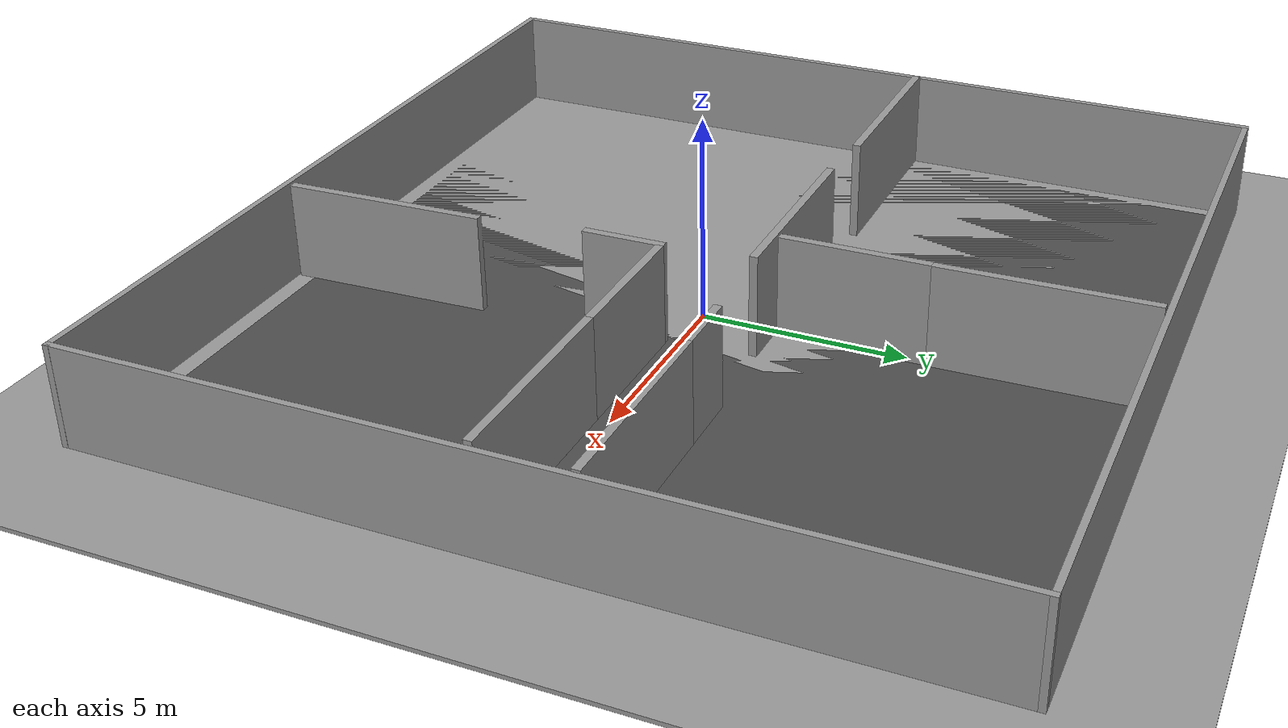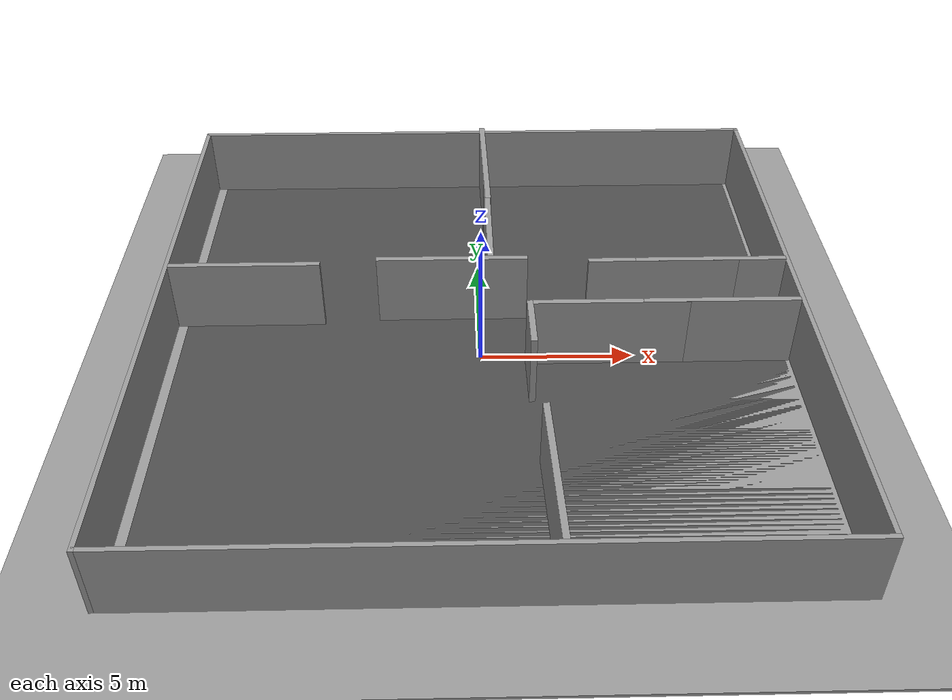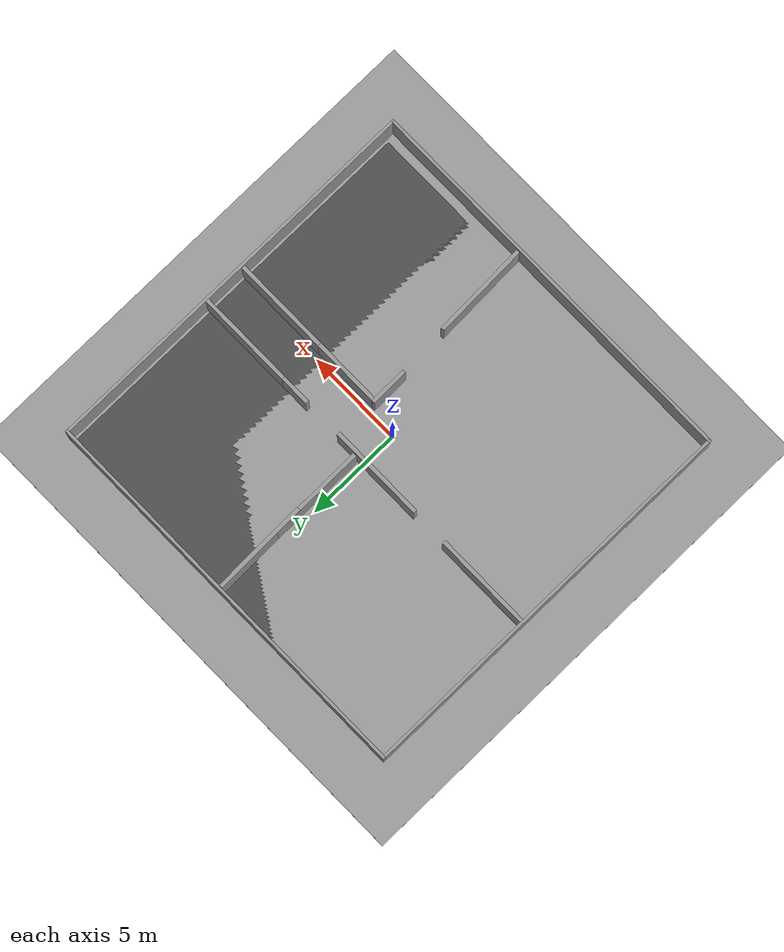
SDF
<sdf version="1.6">
 <world name="default">
  <light name="sun" type="directional">
   <pose>0 0 10 0 -0 0</pose>
   <diffuse>0.8 0.8 0.8 1</diffuse>
   <specular>0.1 0.1 0.1 1</specular>
   <attenuation>
    <range>1000</range>
    <constant>0.9</constant>
    <linear>0.01</linear>
    <quadratic>0.001</quadratic>
   </attenuation>
   <direction>-0.5 0.5 -1</direction>
  </light>
  <model name="ground_plane">
   <static>1</static>
   <link name="link">
    <collision name="collision">
     <geometry><plane><normal>0 0 1</normal><size>100 100</size></plane></geometry>
     <surface><friction><ode><mu>100</mu><mu2>50</mu2></ode></friction></surface>
    </collision>
    <visual name="visual">
     <cast_shadows>0</cast_shadows>
     <geometry><plane><normal>0 0 1</normal><size>100 100</size></plane></geometry>
     <material>
      <script><uri>file://media/materials/scripts/gazebo.material</uri><name>Gazebo/Grey</name></script>
     </material>
    </visual>
   </link>
  </model>
  <gravity>0 0 -9.8</gravity>
  <magnetic_field>6e-06 2.3e-05 -4.2e-05</magnetic_field>
  <atmosphere type="adiabatic"/>
  <physics name="default_physics" default="0" type="ode">
   <max_step_size>0.001</max_step_size>
   <real_time_factor>1</real_time_factor>
   <real_time_update_rate>1000</real_time_update_rate>
  </physics>
  <scene><ambient>0.4 0.4 0.4 1</ambient><background>0.7 0.7 0.7 1</background><shadows>1</shadows></scene>
  <spherical_coordinates>
   <surface_model>EARTH_WGS84</surface_model>
   <latitude_deg>0</latitude_deg>
   <longitude_deg>0</longitude_deg>
   <elevation>0</elevation>
   <heading_deg>0</heading_deg>
  </spherical_coordinates>
  <model name="asphalt_plane">
   <static>1</static>
   <link name="link">
    <collision name="collision"><geometry><box><size>20 20 0.1</size></box></geometry></collision>
    <visual name="visual">
     <cast_shadows>0</cast_shadows>
     <geometry><box><size>20 20 0.1</size></box></geometry>
     <material>
      <script>
       <uri>model://asphalt_plane/materials/scripts</uri>
       <uri>model://asphalt_plane/materials/textures</uri>
       <name>vrc/asphalt</name>
      </script>
     </material>
    </visual>
   </link>
   <pose>0.035645 0.538807 0 0 -0 0</pose>
  </model>
  <model name="ground_plane_0">
   <static>1</static>
   <link name="link">
    <collision name="collision">
     <geometry><plane><normal>0 0 1</normal><size>100 100</size></plane></geometry>
     <surface><friction><ode><mu>100</mu><mu2>50</mu2></ode></friction></surface>
    </collision>
    <visual name="visual">
     <cast_shadows>0</cast_shadows>
     <geometry><plane><normal>0 0 1</normal><size>100 100</size></plane></geometry>
     <material>
      <script><uri>file://media/materials/scripts/gazebo.material</uri><name>Gazebo/Grey</name></script>
     </material>
    </visual>
   </link>
   <pose>-7.33918 4.40208 0 0 -0 0</pose>
  </model>
  <model name="grey_wall_0_0_0_0">
   <link name="link">
    <pose>0 0 1.4 0 -0 0</pose>
    <inertial>
     <mass>1</mass>
     <inertia><ixx>1</ixx><ixy>0</ixy><ixz>0</ixz><iyy>1</iyy><iyz>0</iyz><izz>1</izz></inertia>
    </inertial>
    <visual name="visual">
     <cast_shadows>0</cast_shadows>
     <geometry><box><size>5 0.2 2.5</size></box></geometry>
     <material>
      <script>
       <uri>model://grey_wall/materials/scripts</uri>
       <uri>model://grey_wall/materials/textures</uri>
       <name>vrc/grey_wall</name>
      </script>
      <ambient>1 1 1 1</ambient>
      <diffuse>1 1 1 1</diffuse>
      <specular>0 0 0 1</specular>
      <emissive>0 0 0 1</emissive>
      <shader type="vertex"><normal_map>__default__</normal_map></shader>
     </material>
    </visual>
    <collision name="collision">
     <geometry><box><size>5 0.2 2.5</size></box></geometry>
     <surface>
      <friction>
       <ode><mu>1</mu><mu2>1</mu2><fdir1>0 0 0</fdir1><slip1>0</slip1><slip2>0</slip2></ode>
       <torsional>
        <coefficient>1</coefficient>
        <patch_radius>0</patch_radius>
        <surface_radius>0</surface_radius>
        <use_patch_radius>1</use_patch_radius>
        <ode><slip>0</slip></ode>
       </torsional>
      </friction>
      <bounce><restitution_coefficient>0</restitution_coefficient><threshold>1e+06</threshold></bounce>
      <contact>
       <collide_without_contact>0</collide_without_contact>
       <collide_without_contact_bitmask>1</collide_without_contact_bitmask>
       <collide_bitmask>1</collide_bitmask>
       <ode>
        <soft_cfm>0</soft_cfm>
        <soft_erp>0.2</soft_erp>
        <kp>1e+13</kp>
        <kd>1</kd>
        <max_vel>0.01</max_vel>
        <min_depth>0</min_depth>
       </ode>
       <bullet>
        <split_impulse>1</split_impulse>
        <split_impulse_penetration_threshold>-0.01</split_impulse_penetration_threshold>
        <soft_cfm>0</soft_cfm>
        <soft_erp>0.2</soft_erp>
        <kp>1e+13</kp>
        <kd>1</kd>
       </bullet>
      </contact>
     </surface>
    </collision>
   </link>
   <static>1</static>
   <pose>7.67803 1.90782 -0.08945 0 -0 0</pose>
  </model>
  <model name="grey_wall_0_0_0_0_0">
   <link name="link">
    <pose>0 0 1.4 0 -0 0</pose>
    <inertial>
     <mass>1</mass>
     <inertia><ixx>1</ixx><ixy>0</ixy><ixz>0</ixz><iyy>1</iyy><iyz>0</iyz><izz>1</izz></inertia>
    </inertial>
    <visual name="visual">
     <cast_shadows>0</cast_shadows>
     <geometry><box><size>5 0.2 2.5</size></box></geometry>
     <material>
      <script>
       <uri>model://grey_wall/materials/scripts</uri>
       <uri>model://grey_wall/materials/textures</uri>
       <name>vrc/grey_wall</name>
      </script>
      <ambient>1 1 1 1</ambient>
      <diffuse>1 1 1 1</diffuse>
      <specular>0 0 0 1</specular>
      <emissive>0 0 0 1</emissive>
      <shader type="vertex"><normal_map>__default__</normal_map></shader>
     </material>
    </visual>
    <collision name="collision">
     <geometry><box><size>5 0.2 2.5</size></box></geometry>
     <surface>
      <friction>
       <ode><mu>1</mu><mu2>1</mu2><fdir1>0 0 0</fdir1><slip1>0</slip1><slip2>0</slip2></ode>
       <torsional>
        <coefficient>1</coefficient>
        <patch_radius>0</patch_radius>
        <surface_radius>0</surface_radius>
        <use_patch_radius>1</use_patch_radius>
        <ode><slip>0</slip></ode>
       </torsional>
      </friction>
      <bounce><restitution_coefficient>0</restitution_coefficient><threshold>1e+06</threshold></bounce>
      <contact>
       <collide_without_contact>0</collide_without_contact>
       <collide_without_contact_bitmask>1</collide_without_contact_bitmask>
       <collide_bitmask>1</collide_bitmask>
       <ode>
        <soft_cfm>0</soft_cfm>
        <soft_erp>0.2</soft_erp>
        <kp>1e+13</kp>
        <kd>1</kd>
        <max_vel>0.01</max_vel>
        <min_depth>0</min_depth>
       </ode>
       <bullet>
        <split_impulse>1</split_impulse>
        <split_impulse_penetration_threshold>-0.01</split_impulse_penetration_threshold>
        <soft_cfm>0</soft_cfm>
        <soft_erp>0.2</soft_erp>
        <kp>1e+13</kp>
        <kd>1</kd>
       </bullet>
      </contact>
     </surface>
    </collision>
   </link>
   <static>1</static>
   <pose>6.10995 1.90225 -0.09013 0 -0 0</pose>
  </model>
  <model name="grey_wall_0_0_0_0_1">
   <link name="link">
    <pose>0 0 1.4 0 -0 0</pose>
    <inertial>
     <mass>1</mass>
     <inertia><ixx>1</ixx><ixy>0</ixy><ixz>0</ixz><iyy>1</iyy><iyz>0</iyz><izz>1</izz></inertia>
    </inertial>
    <visual name="visual">
     <cast_shadows>0</cast_shadows>
     <geometry><box><size>5 0.2 2.5</size></box></geometry>
     <material>
      <script>
       <uri>model://grey_wall/materials/scripts</uri>
       <uri>model://grey_wall/materials/textures</uri>
       <name>vrc/grey_wall</name>
      </script>
      <ambient>1 1 1 1</ambient>
      <diffuse>1 1 1 1</diffuse>
      <specular>0 0 0 1</specular>
      <emissive>0 0 0 1</emissive>
      <shader type="vertex"><normal_map>__default__</normal_map></shader>
     </material>
    </visual>
    <collision name="collision">
     <geometry><box><size>5 0.2 2.5</size></box></geometry>
     <surface>
      <friction>
       <ode><mu>1</mu><mu2>1</mu2><fdir1>0 0 0</fdir1><slip1>0</slip1><slip2>0</slip2></ode>
       <torsional>
        <coefficient>1</coefficient>
        <patch_radius>0</patch_radius>
        <surface_radius>0</surface_radius>
        <use_patch_radius>1</use_patch_radius>
        <ode><slip>0</slip></ode>
       </torsional>
      </friction>
      <bounce><restitution_coefficient>0</restitution_coefficient><threshold>1e+06</threshold></bounce>
      <contact>
       <collide_without_contact>0</collide_without_contact>
       <collide_without_contact_bitmask>1</collide_without_contact_bitmask>
       <collide_bitmask>1</collide_bitmask>
       <ode>
        <soft_cfm>0</soft_cfm>
        <soft_erp>0.2</soft_erp>
        <kp>1e+13</kp>
        <kd>1</kd>
        <max_vel>0.01</max_vel>
        <min_depth>0</min_depth>
       </ode>
       <bullet>
        <split_impulse>1</split_impulse>
        <split_impulse_penetration_threshold>-0.01</split_impulse_penetration_threshold>
        <soft_cfm>0</soft_cfm>
        <soft_erp>0.2</soft_erp>
        <kp>1e+13</kp>
        <kd>1</kd>
       </bullet>
      </contact>
     </surface>
    </collision>
   </link>
   <static>1</static>
   <pose>0.362088 4.52652 0.05024 0 -0 1.57628</pose>
  </model>
  <model name="grey_wall_0_0_0_0_2">
   <link name="link">
    <pose>0 0 1.4 0 -0 0</pose>
    <inertial>
     <mass>1</mass>
     <inertia><ixx>1</ixx><ixy>0</ixy><ixz>0</ixz><iyy>1</iyy><iyz>0</iyz><izz>1</izz></inertia>
    </inertial>
    <visual name="visual">
     <cast_shadows>0</cast_shadows>
     <geometry><box><size>5 0.2 2.5</size></box></geometry>
     <material>
      <script>
       <uri>model://grey_wall/materials/scripts</uri>
       <uri>model://grey_wall/materials/textures</uri>
       <name>vrc/grey_wall</name>
      </script>
      <ambient>1 1 1 1</ambient>
      <diffuse>1 1 1 1</diffuse>
      <specular>0 0 0 1</specular>
      <emissive>0 0 0 1</emissive>
      <shader type="vertex"><normal_map>__default__</normal_map></shader>
     </material>
    </visual>
    <collision name="collision">
     <geometry><box><size>5 0.2 2.5</size></box></geometry>
     <surface>
      <friction>
       <ode><mu>1</mu><mu2>1</mu2><fdir1>0 0 0</fdir1><slip1>0</slip1><slip2>0</slip2></ode>
       <torsional>
        <coefficient>1</coefficient>
        <patch_radius>0</patch_radius>
        <surface_radius>0</surface_radius>
        <use_patch_radius>1</use_patch_radius>
        <ode><slip>0</slip></ode>
       </torsional>
      </friction>
      <bounce><restitution_coefficient>0</restitution_coefficient><threshold>1e+06</threshold></bounce>
      <contact>
       <collide_without_contact>0</collide_without_contact>
       <collide_without_contact_bitmask>1</collide_without_contact_bitmask>
       <collide_bitmask>1</collide_bitmask>
       <ode>
        <soft_cfm>0</soft_cfm>
        <soft_erp>0.2</soft_erp>
        <kp>1e+13</kp>
        <kd>1</kd>
        <max_vel>0.01</max_vel>
        <min_depth>0</min_depth>
       </ode>
       <bullet>
        <split_impulse>1</split_impulse>
        <split_impulse_penetration_threshold>-0.01</split_impulse_penetration_threshold>
        <soft_cfm>0</soft_cfm>
        <soft_erp>0.2</soft_erp>
        <kp>1e+13</kp>
        <kd>1</kd>
       </bullet>
      </contact>
     </surface>
    </collision>
   </link>
   <static>1</static>
   <pose>0.328768 8.06562 0.05618 0 0 -1.54983</pose>
  </model>
  <model name="grey_wall_0_0_0_0_3">
   <link name="link">
    <pose>0 0 1.4 0 -0 0</pose>
    <inertial>
     <mass>1</mass>
     <inertia><ixx>1</ixx><ixy>0</ixy><ixz>0</ixz><iyy>1</iyy><iyz>0</iyz><izz>1</izz></inertia>
    </inertial>
    <visual name="visual">
     <cast_shadows>0</cast_shadows>
     <geometry><box><size>5 0.2 2.5</size></box></geometry>
     <material>
      <script>
       <uri>model://grey_wall/materials/scripts</uri>
       <uri>model://grey_wall/materials/textures</uri>
       <name>vrc/grey_wall</name>
      </script>
      <ambient>1 1 1 1</ambient>
      <diffuse>1 1 1 1</diffuse>
      <specular>0 0 0 1</specular>
      <emissive>0 0 0 1</emissive>
      <shader type="vertex"><normal_map>__default__</normal_map></shader>
     </material>
    </visual>
    <collision name="collision">
     <geometry><box><size>5 0.2 2.5</size></box></geometry>
     <surface>
      <friction>
       <ode><mu>1</mu><mu2>1</mu2><fdir1>0 0 0</fdir1><slip1>0</slip1><slip2>0</slip2></ode>
       <torsional>
        <coefficient>1</coefficient>
        <patch_radius>0</patch_radius>
        <surface_radius>0</surface_radius>
        <use_patch_radius>1</use_patch_radius>
        <ode><slip>0</slip></ode>
       </torsional>
      </friction>
      <bounce><restitution_coefficient>0</restitution_coefficient><threshold>1e+06</threshold></bounce>
      <contact>
       <collide_without_contact>0</collide_without_contact>
       <collide_without_contact_bitmask>1</collide_without_contact_bitmask>
       <collide_bitmask>1</collide_bitmask>
       <ode>
        <soft_cfm>0</soft_cfm>
        <soft_erp>0.2</soft_erp>
        <kp>1e+13</kp>
        <kd>1</kd>
        <max_vel>0.01</max_vel>
        <min_depth>0</min_depth>
       </ode>
       <bullet>
        <split_impulse>1</split_impulse>
        <split_impulse_penetration_threshold>-0.01</split_impulse_penetration_threshold>
        <soft_cfm>0</soft_cfm>
        <soft_erp>0.2</soft_erp>
        <kp>1e+13</kp>
        <kd>1</kd>
       </bullet>
      </contact>
     </surface>
    </collision>
   </link>
   <static>1</static>
   <pose>-0.906268 1.88516 0.06706 0 -0 0</pose>
  </model>
  <model name="grey_wall_0_0_0_0_4">
   <link name="link">
    <pose>0 0 1.4 0 -0 0</pose>
    <inertial>
     <mass>1</mass>
     <inertia><ixx>1</ixx><ixy>0</ixy><ixz>0</ixz><iyy>1</iyy><iyz>0</iyz><izz>1</izz></inertia>
    </inertial>
    <visual name="visual">
     <cast_shadows>0</cast_shadows>
     <geometry><box><size>5 0.2 2.5</size></box></geometry>
     <material>
      <script>
       <uri>model://grey_wall/materials/scripts</uri>
       <uri>model://grey_wall/materials/textures</uri>
       <name>vrc/grey_wall</name>
      </script>
      <ambient>1 1 1 1</ambient>
      <diffuse>1 1 1 1</diffuse>
      <specular>0 0 0 1</specular>
      <emissive>0 0 0 1</emissive>
      <shader type="vertex"><normal_map>__default__</normal_map></shader>
     </material>
    </visual>
    <collision name="collision">
     <geometry><box><size>5 0.2 2.5</size></box></geometry>
     <surface>
      <friction>
       <ode><mu>1</mu><mu2>1</mu2><fdir1>0 0 0</fdir1><slip1>0</slip1><slip2>0</slip2></ode>
       <torsional>
        <coefficient>1</coefficient>
        <patch_radius>0</patch_radius>
        <surface_radius>0</surface_radius>
        <use_patch_radius>1</use_patch_radius>
        <ode><slip>0</slip></ode>
       </torsional>
      </friction>
      <bounce><restitution_coefficient>0</restitution_coefficient><threshold>1e+06</threshold></bounce>
      <contact>
       <collide_without_contact>0</collide_without_contact>
       <collide_without_contact_bitmask>1</collide_without_contact_bitmask>
       <collide_bitmask>1</collide_bitmask>
       <ode>
        <soft_cfm>0</soft_cfm>
        <soft_erp>0.2</soft_erp>
        <kp>1e+13</kp>
        <kd>1</kd>
        <max_vel>0.01</max_vel>
        <min_depth>0</min_depth>
       </ode>
       <bullet>
        <split_impulse>1</split_impulse>
        <split_impulse_penetration_threshold>-0.01</split_impulse_penetration_threshold>
        <soft_cfm>0</soft_cfm>
        <soft_erp>0.2</soft_erp>
        <kp>1e+13</kp>
        <kd>1</kd>
       </bullet>
      </contact>
     </surface>
    </collision>
   </link>
   <static>1</static>
   <pose>-7.77111 1.8972 -0.09807 0 -0 0</pose>
  </model>
  <model name="grey_wall_0_0_0_0_5">
   <link name="link">
    <pose>0 0 1.4 0 -0 0</pose>
    <inertial>
     <mass>1</mass>
     <inertia><ixx>1</ixx><ixy>0</ixy><ixz>0</ixz><iyy>1</iyy><iyz>0</iyz><izz>1</izz></inertia>
    </inertial>
    <visual name="visual">
     <cast_shadows>0</cast_shadows>
     <geometry><box><size>5 0.2 2.5</size></box></geometry>
     <material>
      <script>
       <uri>model://grey_wall/materials/scripts</uri>
       <uri>model://grey_wall/materials/textures</uri>
       <name>vrc/grey_wall</name>
      </script>
      <ambient>1 1 1 1</ambient>
      <diffuse>1 1 1 1</diffuse>
      <specular>0 0 0 1</specular>
      <emissive>0 0 0 1</emissive>
      <shader type="vertex"><normal_map>__default__</normal_map></shader>
     </material>
    </visual>
    <collision name="collision">
     <geometry><box><size>5 0.2 2.5</size></box></geometry>
     <surface>
      <friction>
       <ode><mu>1</mu><mu2>1</mu2><fdir1>0 0 0</fdir1><slip1>0</slip1><slip2>0</slip2></ode>
       <torsional>
        <coefficient>1</coefficient>
        <patch_radius>0</patch_radius>
        <surface_radius>0</surface_radius>
        <use_patch_radius>1</use_patch_radius>
        <ode><slip>0</slip></ode>
       </torsional>
      </friction>
      <bounce><restitution_coefficient>0</restitution_coefficient><threshold>1e+06</threshold></bounce>
      <contact>
       <collide_without_contact>0</collide_without_contact>
       <collide_without_contact_bitmask>1</collide_without_contact_bitmask>
       <collide_bitmask>1</collide_bitmask>
       <ode>
        <soft_cfm>0</soft_cfm>
        <soft_erp>0.2</soft_erp>
        <kp>1e+13</kp>
        <kd>1</kd>
        <max_vel>0.01</max_vel>
        <min_depth>0</min_depth>
       </ode>
       <bullet>
        <split_impulse>1</split_impulse>
        <split_impulse_penetration_threshold>-0.01</split_impulse_penetration_threshold>
        <soft_cfm>0</soft_cfm>
        <soft_erp>0.2</soft_erp>
        <kp>1e+13</kp>
        <kd>1</kd>
       </bullet>
      </contact>
     </surface>
    </collision>
   </link>
   <static>1</static>
   <pose>1.84149 -7.35537 -0.19122 0 -0 1.60542</pose>
  </model>
  <model name="grey_wall_0_0_0_0_6">
   <link name="link">
    <pose>0 0 1.4 0 -0 0</pose>
    <inertial>
     <mass>1</mass>
     <inertia><ixx>1</ixx><ixy>0</ixy><ixz>0</ixz><iyy>1</iyy><iyz>0</iyz><izz>1</izz></inertia>
    </inertial>
    <visual name="visual">
     <cast_shadows>0</cast_shadows>
     <geometry><box><size>5 0.2 2.5</size></box></geometry>
     <material>
      <script>
       <uri>model://grey_wall/materials/scripts</uri>
       <uri>model://grey_wall/materials/textures</uri>
       <name>vrc/grey_wall</name>
      </script>
      <ambient>1 1 1 1</ambient>
      <diffuse>1 1 1 1</diffuse>
      <specular>0 0 0 1</specular>
      <emissive>0 0 0 1</emissive>
      <shader type="vertex"><normal_map>__default__</normal_map></shader>
     </material>
    </visual>
    <collision name="collision">
     <geometry><box><size>5 0.2 2.5</size></box></geometry>
     <surface>
      <friction>
       <ode><mu>1</mu><mu2>1</mu2><fdir1>0 0 0</fdir1><slip1>0</slip1><slip2>0</slip2></ode>
       <torsional>
        <coefficient>1</coefficient>
        <patch_radius>0</patch_radius>
        <surface_radius>0</surface_radius>
        <use_patch_radius>1</use_patch_radius>
        <ode><slip>0</slip></ode>
       </torsional>
      </friction>
      <bounce><restitution_coefficient>0</restitution_coefficient><threshold>1e+06</threshold></bounce>
      <contact>
       <collide_without_contact>0</collide_without_contact>
       <collide_without_contact_bitmask>1</collide_without_contact_bitmask>
       <collide_bitmask>1</collide_bitmask>
       <ode>
        <soft_cfm>0</soft_cfm>
        <soft_erp>0.2</soft_erp>
        <kp>1e+13</kp>
        <kd>1</kd>
        <max_vel>0.01</max_vel>
        <min_depth>0</min_depth>
       </ode>
       <bullet>
        <split_impulse>1</split_impulse>
        <split_impulse_penetration_threshold>-0.01</split_impulse_penetration_threshold>
        <soft_cfm>0</soft_cfm>
        <soft_erp>0.2</soft_erp>
        <kp>1e+13</kp>
        <kd>1</kd>
       </bullet>
      </contact>
     </surface>
    </collision>
   </link>
   <static>1</static>
   <pose>7.63913 -0.338195 -0.06732 0 -0 0</pose>
  </model>
  <model name="grey_wall_0_0_0_0_7">
   <link name="link">
    <pose>0 0 1.4 0 -0 0</pose>
    <inertial>
     <mass>1</mass>
     <inertia><ixx>1</ixx><ixy>0</ixy><ixz>0</ixz><iyy>1</iyy><iyz>0</iyz><izz>1</izz></inertia>
    </inertial>
    <visual name="visual">
     <cast_shadows>0</cast_shadows>
     <geometry><box><size>5 0.2 2.5</size></box></geometry>
     <material>
      <script>
       <uri>model://grey_wall/materials/scripts</uri>
       <uri>model://grey_wall/materials/textures</uri>
       <name>vrc/grey_wall</name>
      </script>
      <ambient>1 1 1 1</ambient>
      <diffuse>1 1 1 1</diffuse>
      <specular>0 0 0 1</specular>
      <emissive>0 0 0 1</emissive>
      <shader type="vertex"><normal_map>__default__</normal_map></shader>
     </material>
    </visual>
    <collision name="collision">
     <geometry><box><size>5 0.2 2.5</size></box></geometry>
     <surface>
      <friction>
       <ode><mu>1</mu><mu2>1</mu2><fdir1>0 0 0</fdir1><slip1>0</slip1><slip2>0</slip2></ode>
       <torsional>
        <coefficient>1</coefficient>
        <patch_radius>0</patch_radius>
        <surface_radius>0</surface_radius>
        <use_patch_radius>1</use_patch_radius>
        <ode><slip>0</slip></ode>
       </torsional>
      </friction>
      <bounce><restitution_coefficient>0</restitution_coefficient><threshold>1e+06</threshold></bounce>
      <contact>
       <collide_without_contact>0</collide_without_contact>
       <collide_without_contact_bitmask>1</collide_without_contact_bitmask>
       <collide_bitmask>1</collide_bitmask>
       <ode>
        <soft_cfm>0</soft_cfm>
        <soft_erp>0.2</soft_erp>
        <kp>1e+13</kp>
        <kd>1</kd>
        <max_vel>0.01</max_vel>
        <min_depth>0</min_depth>
       </ode>
       <bullet>
        <split_impulse>1</split_impulse>
        <split_impulse_penetration_threshold>-0.01</split_impulse_penetration_threshold>
        <soft_cfm>0</soft_cfm>
        <soft_erp>0.2</soft_erp>
        <kp>1e+13</kp>
        <kd>1</kd>
       </bullet>
      </contact>
     </surface>
    </collision>
   </link>
   <static>1</static>
   <pose>4.13386 -0.339857 -0.07051 0 -0 0</pose>
  </model>
  <model name="grey_wall_0_0_0_0_8_0">
   <link name="link">
    <pose>0 0 1.4 0 -0 0</pose>
    <inertial>
     <mass>1</mass>
     <inertia><ixx>1</ixx><ixy>0</ixy><ixz>0</ixz><iyy>1</iyy><iyz>0</iyz><izz>1</izz></inertia>
    </inertial>
    <visual name="visual">
     <cast_shadows>0</cast_shadows>
     <geometry><box><size>2 0.2 2.5</size></box></geometry>
     <material>
      <script>
       <uri>model://grey_wall/materials/scripts</uri>
       <uri>model://grey_wall/materials/textures</uri>
       <name>vrc/grey_wall</name>
      </script>
      <ambient>1 1 1 1</ambient>
      <diffuse>1 1 1 1</diffuse>
      <specular>0 0 0 1</specular>
      <emissive>0 0 0 1</emissive>
      <shader type="vertex"><normal_map>__default__</normal_map></shader>
     </material>
    </visual>
    <collision name="collision">
     <geometry><box><size>2 0.2 2.5</size></box></geometry>
     <surface>
      <friction>
       <ode><mu>1</mu><mu2>1</mu2><fdir1>0 0 0</fdir1><slip1>0</slip1><slip2>0</slip2></ode>
       <torsional>
        <coefficient>1</coefficient>
        <patch_radius>0</patch_radius>
        <surface_radius>0</surface_radius>
        <use_patch_radius>1</use_patch_radius>
        <ode><slip>0</slip></ode>
       </torsional>
      </friction>
      <bounce><restitution_coefficient>0</restitution_coefficient><threshold>1e+06</threshold></bounce>
      <contact>
       <collide_without_contact>0</collide_without_contact>
       <collide_without_contact_bitmask>1</collide_without_contact_bitmask>
       <collide_bitmask>1</collide_bitmask>
       <ode>
        <soft_cfm>0</soft_cfm>
        <soft_erp>0.2</soft_erp>
        <kp>1e+13</kp>
        <kd>1</kd>
        <max_vel>0.01</max_vel>
        <min_depth>0</min_depth>
       </ode>
       <bullet>
        <split_impulse>1</split_impulse>
        <split_impulse_penetration_threshold>-0.01</split_impulse_penetration_threshold>
        <soft_cfm>0</soft_cfm>
        <soft_erp>0.2</soft_erp>
        <kp>1e+13</kp>
        <kd>1</kd>
       </bullet>
      </contact>
     </surface>
    </collision>
   </link>
   <static>1</static>
   <pose>1.56309 -1.25476 -0.07404 0 -0 1.58241</pose>
  </model>
  <model name="wall_room_0">
   <link name="Wall_21">
    <pose>10.2987 0.001324 0 0 -0 1.5708</pose>
    <visual name="Wall_21_Visual">
     <pose>0 0 1.25 0 -0 0</pose>
     <geometry><box><size>20.75 0.15 2.5</size></box></geometry>
     <material>
      <script><uri>file://media/materials/scripts/gazebo.material</uri><name>Gazebo/Grey</name></script>
      <ambient>1 1 1 1</ambient>
      <diffuse>0.7 0.7 0.7 1</diffuse>
      <specular>0.01 0.01 0.01 1</specular>
      <emissive>0 0 0 1</emissive>
     </material>
    </visual>
    <collision name="Wall_21_Collision">
     <pose>0 0 1.25 0 -0 0</pose>
     <geometry><box><size>20.75 0.15 2.5</size></box></geometry>
     <surface>
      <friction>
       <ode><mu>1</mu><mu2>1</mu2><fdir1>0 0 0</fdir1><slip1>0</slip1><slip2>0</slip2></ode>
       <torsional>
        <coefficient>1</coefficient>
        <patch_radius>0</patch_radius>
        <surface_radius>0</surface_radius>
        <use_patch_radius>1</use_patch_radius>
        <ode><slip>0</slip></ode>
       </torsional>
      </friction>
      <bounce><restitution_coefficient>0</restitution_coefficient><threshold>1e+06</threshold></bounce>
      <contact>
       <collide_without_contact>0</collide_without_contact>
       <collide_without_contact_bitmask>1</collide_without_contact_bitmask>
       <collide_bitmask>1</collide_bitmask>
       <ode>
        <soft_cfm>0</soft_cfm>
        <soft_erp>0.2</soft_erp>
        <kp>1e+13</kp>
        <kd>1</kd>
        <max_vel>0.01</max_vel>
        <min_depth>0</min_depth>
       </ode>
       <bullet>
        <split_impulse>1</split_impulse>
        <split_impulse_penetration_threshold>-0.01</split_impulse_penetration_threshold>
        <soft_cfm>0</soft_cfm>
        <soft_erp>0.2</soft_erp>
        <kp>1e+13</kp>
        <kd>1</kd>
       </bullet>
      </contact>
     </surface>
    </collision>
   </link>
   <link name="Wall_22">
    <pose>-0.001323 10.3013 0 0 -0 3.14159</pose>
    <visual name="Wall_22_Visual">
     <pose>0 0 1.25 0 -0 0</pose>
     <geometry><box><size>20.75 0.15 2.5</size></box></geometry>
     <material>
      <script><uri>file://media/materials/scripts/gazebo.material</uri><name>Gazebo/Grey</name></script>
      <ambient>1 1 1 1</ambient>
      <diffuse>0.7 0.7 0.7 1</diffuse>
      <specular>0.01 0.01 0.01 1</specular>
      <emissive>0 0 0 1</emissive>
     </material>
    </visual>
    <collision name="Wall_22_Collision">
     <pose>0 0 1.25 0 -0 0</pose>
     <geometry><box><size>20.75 0.15 2.5</size></box></geometry>
     <surface>
      <friction>
       <ode><mu>1</mu><mu2>1</mu2><fdir1>0 0 0</fdir1><slip1>0</slip1><slip2>0</slip2></ode>
       <torsional>
        <coefficient>1</coefficient>
        <patch_radius>0</patch_radius>
        <surface_radius>0</surface_radius>
        <use_patch_radius>1</use_patch_radius>
        <ode><slip>0</slip></ode>
       </torsional>
      </friction>
      <bounce><restitution_coefficient>0</restitution_coefficient><threshold>1e+06</threshold></bounce>
      <contact>
       <collide_without_contact>0</collide_without_contact>
       <collide_without_contact_bitmask>1</collide_without_contact_bitmask>
       <collide_bitmask>1</collide_bitmask>
       <ode>
        <soft_cfm>0</soft_cfm>
        <soft_erp>0.2</soft_erp>
        <kp>1e+13</kp>
        <kd>1</kd>
        <max_vel>0.01</max_vel>
        <min_depth>0</min_depth>
       </ode>
       <bullet>
        <split_impulse>1</split_impulse>
        <split_impulse_penetration_threshold>-0.01</split_impulse_penetration_threshold>
        <soft_cfm>0</soft_cfm>
        <soft_erp>0.2</soft_erp>
        <kp>1e+13</kp>
        <kd>1</kd>
       </bullet>
      </contact>
     </surface>
    </collision>
   </link>
   <link name="Wall_24">
    <pose>-10.2987 -0.001323 0 0 0 -1.5708</pose>
    <visual name="Wall_24_Visual">
     <pose>0 0 1.25 0 -0 0</pose>
     <geometry><box><size>20.75 0.15 2.5</size></box></geometry>
     <material>
      <script><uri>file://media/materials/scripts/gazebo.material</uri><name>Gazebo/Grey</name></script>
      <ambient>1 1 1 1</ambient>
      <diffuse>0.7 0.7 0.7 1</diffuse>
      <specular>0.01 0.01 0.01 1</specular>
      <emissive>0 0 0 1</emissive>
     </material>
    </visual>
    <collision name="Wall_24_Collision">
     <pose>0 0 1.25 0 -0 0</pose>
     <geometry><box><size>20.75 0.15 2.5</size></box></geometry>
     <surface>
      <friction>
       <ode><mu>1</mu><mu2>1</mu2><fdir1>0 0 0</fdir1><slip1>0</slip1><slip2>0</slip2></ode>
       <torsional>
        <coefficient>1</coefficient>
        <patch_radius>0</patch_radius>
        <surface_radius>0</surface_radius>
        <use_patch_radius>1</use_patch_radius>
        <ode><slip>0</slip></ode>
       </torsional>
      </friction>
      <bounce><restitution_coefficient>0</restitution_coefficient><threshold>1e+06</threshold></bounce>
      <contact>
       <collide_without_contact>0</collide_without_contact>
       <collide_without_contact_bitmask>1</collide_without_contact_bitmask>
       <collide_bitmask>1</collide_bitmask>
       <ode>
        <soft_cfm>0</soft_cfm>
        <soft_erp>0.2</soft_erp>
        <kp>1e+13</kp>
        <kd>1</kd>
        <max_vel>0.01</max_vel>
        <min_depth>0</min_depth>
       </ode>
       <bullet>
        <split_impulse>1</split_impulse>
        <split_impulse_penetration_threshold>-0.01</split_impulse_penetration_threshold>
        <soft_cfm>0</soft_cfm>
        <soft_erp>0.2</soft_erp>
        <kp>1e+13</kp>
        <kd>1</kd>
       </bullet>
      </contact>
     </surface>
    </collision>
   </link>
   <link name="Wall_27">
    <pose>0.001324 -10.3013 0 0 -0 0</pose>
    <visual name="Wall_27_Visual">
     <pose>0 0 1.25 0 -0 0</pose>
     <geometry><box><size>20.75 0.15 2.5</size></box></geometry>
     <material>
      <script><uri>file://media/materials/scripts/gazebo.material</uri><name>Gazebo/Grey</name></script>
      <ambient>1 1 1 1</ambient>
      <diffuse>0.7 0.7 0.7 1</diffuse>
      <specular>0.01 0.01 0.01 1</specular>
      <emissive>0 0 0 1</emissive>
     </material>
    </visual>
    <collision name="Wall_27_Collision">
     <pose>0 0 1.25 0 -0 0</pose>
     <geometry><box><size>20.75 0.15 2.5</size></box></geometry>
     <surface>
      <friction>
       <ode><mu>1</mu><mu2>1</mu2><fdir1>0 0 0</fdir1><slip1>0</slip1><slip2>0</slip2></ode>
       <torsional>
        <coefficient>1</coefficient>
        <patch_radius>0</patch_radius>
        <surface_radius>0</surface_radius>
        <use_patch_radius>1</use_patch_radius>
        <ode><slip>0</slip></ode>
       </torsional>
      </friction>
      <bounce><restitution_coefficient>0</restitution_coefficient><threshold>1e+06</threshold></bounce>
      <contact>
       <collide_without_contact>0</collide_without_contact>
       <collide_without_contact_bitmask>1</collide_without_contact_bitmask>
       <collide_bitmask>1</collide_bitmask>
       <ode>
        <soft_cfm>0</soft_cfm>
        <soft_erp>0.2</soft_erp>
        <kp>1e+13</kp>
        <kd>1</kd>
        <max_vel>0.01</max_vel>
        <min_depth>0</min_depth>
       </ode>
       <bullet>
        <split_impulse>1</split_impulse>
        <split_impulse_penetration_threshold>-0.01</split_impulse_penetration_threshold>
        <soft_cfm>0</soft_cfm>
        <soft_erp>0.2</soft_erp>
        <kp>1e+13</kp>
        <kd>1</kd>
       </bullet>
      </contact>
     </surface>
    </collision>
   </link>
   <static>1</static>
   <pose>-0.0532 0.33605 0 0 -0 0</pose>
  </model>
 </world>
</sdf>
